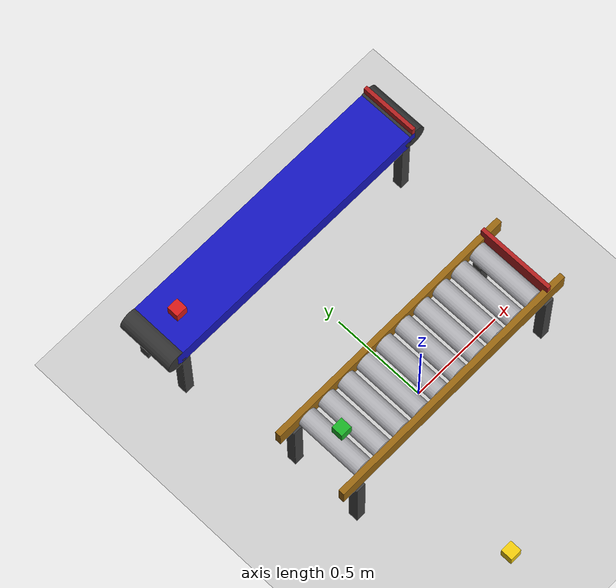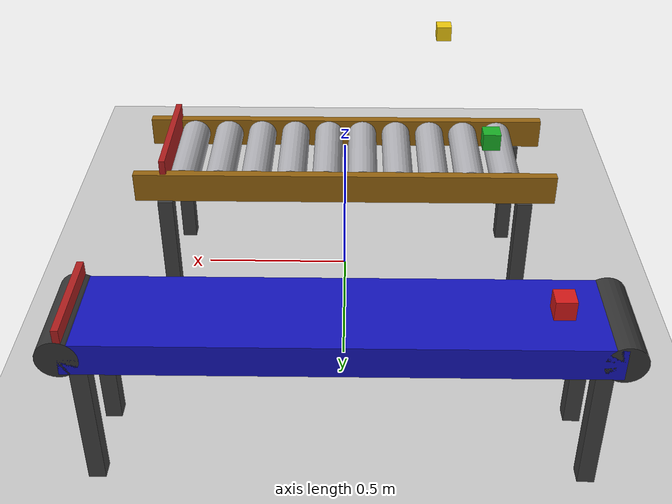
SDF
<sdf version="1.9">
 <world name="conveyor_compare">
  <physics name="4ms" type="ignored">
   <max_step_size>0.004</max_step_size>
   <real_time_factor>1.0</real_time_factor>
  </physics>
  <plugin filename="gz-sim-physics-system" name="gz::sim::systems::Physics"/>
  <plugin filename="gz-sim-user-commands-system" name="gz::sim::systems::UserCommands"/>
  <plugin filename="gz-sim-scene-broadcaster-system" name="gz::sim::systems::SceneBroadcaster"/>
  <scene><ambient>1 1 1</ambient><background>0.8 0.85 0.9</background></scene>
  <light type="directional" name="sun">
   <pose>0 0 10 0 0 0</pose>
   <diffuse>0.9 0.9 0.9 1</diffuse>
   <specular>0.3 0.3 0.3 1</specular>
   <direction>-0.4 0.2 -0.9</direction>
  </light>
  <model name="ground_plane">
   <static>true</static>
   <link name="link">
    <collision name="collision">
     <geometry><plane><normal>0 0 1</normal><size>100 100</size></plane></geometry>
    </collision>
    <visual name="visual">
     <geometry><plane><normal>0 0 1</normal><size>100 100</size></plane></geometry>
     <material><ambient>0.8 0.8 0.8 1</ambient><diffuse>0.8 0.8 0.8 1</diffuse></material>
    </visual>
   </link>
  </model>
  <model name="belt_track">
   <pose>0 0.9 0 0 0 0</pose>
   <static>1</static>
   <link name="base_link">
    <pose>0 0 0.450 0 0 0</pose>
    <collision name="belt_col">
     <geometry><box><size>1.5 0.30 0.10</size></box></geometry>
     <surface><friction><ode><mu>0.7</mu><mu2>150</mu2><fdir1>0 1 0</fdir1></ode></friction></surface>
    </collision>
    <visual name="belt_vis">
     <geometry><box><size>1.5 0.30 0.10</size></box></geometry>
     <material><ambient>0.05 0.05 0.6 1</ambient><diffuse>0.08 0.08 0.75 1</diffuse></material>
    </visual>
    <collision name="roll_a_col">
     <pose>0.75 0 0 -1.5708 0 0</pose>
     <geometry><cylinder><length>0.30</length><radius>0.06</radius></cylinder></geometry>
    </collision>
    <visual name="roll_a_vis">
     <pose>0.75 0 0 -1.5708 0 0</pose>
     <geometry><cylinder><length>0.30</length><radius>0.06</radius></cylinder></geometry>
     <material><ambient>0.2 0.2 0.2 1</ambient><diffuse>0.2 0.2 0.2 1</diffuse></material>
    </visual>
    <collision name="roll_b_col">
     <pose>-0.75 0 0 -1.5708 0 0</pose>
     <geometry><cylinder><length>0.30</length><radius>0.06</radius></cylinder></geometry>
    </collision>
    <visual name="roll_b_vis">
     <pose>-0.75 0 0 -1.5708 0 0</pose>
     <geometry><cylinder><length>0.30</length><radius>0.06</radius></cylinder></geometry>
     <material><ambient>0.2 0.2 0.2 1</ambient><diffuse>0.2 0.2 0.2 1</diffuse></material>
    </visual>
    <collision name="lip_col">
     <pose>0.74 0 0.05 0 0 0</pose>
     <geometry><box><size>0.02 0.30 0.10</size></box></geometry>
    </collision>
    <visual name="lip_vis">
     <pose>0.74 0 0.05 0 0 0</pose>
     <geometry><box><size>0.02 0.30 0.10</size></box></geometry>
     <material><ambient>0.6 0.1 0.1 1</ambient><diffuse>0.7 0.12 0.12 1</diffuse></material>
    </visual>
   </link>
   <link name="leg_0">
    <pose>-0.7 -0.12 0.2000 0 0 0</pose>
    <visual name="visual">
     <geometry><box><size>0.05 0.05 0.4000</size></box></geometry>
     <material><ambient>0.25 0.25 0.25 1</ambient><diffuse>0.25 0.25 0.25 1</diffuse></material>
    </visual>
   </link>
   <link name="leg_1">
    <pose>-0.7 0.12 0.2000 0 0 0</pose>
    <visual name="visual">
     <geometry><box><size>0.05 0.05 0.4000</size></box></geometry>
     <material><ambient>0.25 0.25 0.25 1</ambient><diffuse>0.25 0.25 0.25 1</diffuse></material>
    </visual>
   </link>
   <link name="leg_2">
    <pose>0.7 -0.12 0.2000 0 0 0</pose>
    <visual name="visual">
     <geometry><box><size>0.05 0.05 0.4000</size></box></geometry>
     <material><ambient>0.25 0.25 0.25 1</ambient><diffuse>0.25 0.25 0.25 1</diffuse></material>
    </visual>
   </link>
   <link name="leg_3">
    <pose>0.7 0.12 0.2000 0 0 0</pose>
    <visual name="visual">
     <geometry><box><size>0.05 0.05 0.4000</size></box></geometry>
     <material><ambient>0.25 0.25 0.25 1</ambient><diffuse>0.25 0.25 0.25 1</diffuse></material>
    </visual>
   </link>
   <plugin filename="gz-sim-track-controller-system" name="gz::sim::systems::TrackController">
    <link>base_link</link>
   </plugin>
  </model>
  <model name="roller_conv">
   <link name="frame_link">
    <collision name="rail_l_col">
     <pose>0 0.19 0.450 0 0 0</pose>
     <geometry><box><size>1.4 0.03 0.10</size></box></geometry>
    </collision>
    <visual name="rail_l_vis">
     <pose>0 0.19 0.450 0 0 0</pose>
     <geometry><box><size>1.4 0.03 0.10</size></box></geometry>
     <material><ambient>0.5 0.35 0.05 1</ambient><diffuse>0.6 0.4 0.06 1</diffuse></material>
    </visual>
    <collision name="rail_r_col">
     <pose>0 -0.19 0.450 0 0 0</pose>
     <geometry><box><size>1.4 0.03 0.10</size></box></geometry>
    </collision>
    <visual name="rail_r_vis">
     <pose>0 -0.19 0.450 0 0 0</pose>
     <geometry><box><size>1.4 0.03 0.10</size></box></geometry>
     <material><ambient>0.5 0.35 0.05 1</ambient><diffuse>0.6 0.4 0.06 1</diffuse></material>
    </visual>
    <collision name="lip_col">
     <pose>0.60 0 0.500 0 0 0</pose>
     <geometry><box><size>0.02 0.40 0.10</size></box></geometry>
    </collision>
    <visual name="lip_vis">
     <pose>0.60 0 0.500 0 0 0</pose>
     <geometry><box><size>0.02 0.40 0.10</size></box></geometry>
     <material><ambient>0.6 0.1 0.1 1</ambient><diffuse>0.7 0.12 0.12 1</diffuse></material>
    </visual>
   </link>
   <joint name="frame_fixed" type="fixed"><parent>world</parent><child>frame_link</child></joint>
   <link name="fleg_0">
    <pose>-0.6 -0.19 0.2000 0 0 0</pose>
    <visual name="visual">
     <geometry><box><size>0.05 0.05 0.4000</size></box></geometry>
     <material><ambient>0.25 0.25 0.25 1</ambient><diffuse>0.25 0.25 0.25 1</diffuse></material>
    </visual>
   </link>
   <link name="fleg_1">
    <pose>-0.6 0.19 0.2000 0 0 0</pose>
    <visual name="visual">
     <geometry><box><size>0.05 0.05 0.4000</size></box></geometry>
     <material><ambient>0.25 0.25 0.25 1</ambient><diffuse>0.25 0.25 0.25 1</diffuse></material>
    </visual>
   </link>
   <link name="fleg_2">
    <pose>0.6 -0.19 0.2000 0 0 0</pose>
    <visual name="visual">
     <geometry><box><size>0.05 0.05 0.4000</size></box></geometry>
     <material><ambient>0.25 0.25 0.25 1</ambient><diffuse>0.25 0.25 0.25 1</diffuse></material>
    </visual>
   </link>
   <link name="fleg_3">
    <pose>0.6 0.19 0.2000 0 0 0</pose>
    <visual name="visual">
     <geometry><box><size>0.05 0.05 0.4000</size></box></geometry>
     <material><ambient>0.25 0.25 0.25 1</ambient><diffuse>0.25 0.25 0.25 1</diffuse></material>
    </visual>
   </link>
   <link name="roller_0">
    <pose>-0.54 0 0.450 1.5708 0 0</pose>
    <inertial>
     <mass>0.3</mass>
     <inertia><ixx>0.0006</ixx><iyy>0.0006</iyy><izz>0.0004</izz><ixy>0</ixy><ixz>0</ixz><iyz>0</iyz></inertia>
    </inertial>
    <collision name="col">
     <geometry><cylinder><length>0.34</length><radius>0.05</radius></cylinder></geometry>
     <surface><friction><ode><mu>1.2</mu><mu2>1.2</mu2></ode></friction></surface>
    </collision>
    <visual name="vis">
     <geometry><cylinder><length>0.34</length><radius>0.05</radius></cylinder></geometry>
     <material><ambient>0.55 0.55 0.58 1</ambient><diffuse>0.7 0.7 0.72 1</diffuse></material>
    </visual>
   </link>
   <joint name="roller_0_joint" type="revolute">
    <parent>frame_link</parent>
    <child>roller_0</child>
    <axis>
     <xyz>0 1 0</xyz>
     <limit><lower>-1e16</lower><upper>1e16</upper></limit>
     <dynamics><friction>0.0</friction></dynamics>
    </axis>
   </joint>
   <plugin filename="gz-sim-joint-controller-system" name="gz::sim::systems::JointController">
    <joint_name>roller_0_joint</joint_name>
    <initial_velocity>-4.0</initial_velocity>
    <p_gain>0.4</p_gain>
   </plugin>
   <link name="roller_1">
    <pose>-0.42 0 0.450 1.5708 0 0</pose>
    <inertial>
     <mass>0.3</mass>
     <inertia><ixx>0.0006</ixx><iyy>0.0006</iyy><izz>0.0004</izz><ixy>0</ixy><ixz>0</ixz><iyz>0</iyz></inertia>
    </inertial>
    <collision name="col">
     <geometry><cylinder><length>0.34</length><radius>0.05</radius></cylinder></geometry>
     <surface><friction><ode><mu>1.2</mu><mu2>1.2</mu2></ode></friction></surface>
    </collision>
    <visual name="vis">
     <geometry><cylinder><length>0.34</length><radius>0.05</radius></cylinder></geometry>
     <material><ambient>0.55 0.55 0.58 1</ambient><diffuse>0.7 0.7 0.72 1</diffuse></material>
    </visual>
   </link>
   <joint name="roller_1_joint" type="revolute">
    <parent>frame_link</parent>
    <child>roller_1</child>
    <axis>
     <xyz>0 1 0</xyz>
     <limit><lower>-1e16</lower><upper>1e16</upper></limit>
     <dynamics><friction>0.0</friction></dynamics>
    </axis>
   </joint>
   <plugin filename="gz-sim-joint-controller-system" name="gz::sim::systems::JointController">
    <joint_name>roller_1_joint</joint_name>
    <initial_velocity>-4.0</initial_velocity>
    <p_gain>0.4</p_gain>
   </plugin>
   <link name="roller_2">
    <pose>-0.3 0 0.450 1.5708 0 0</pose>
    <inertial>
     <mass>0.3</mass>
     <inertia><ixx>0.0006</ixx><iyy>0.0006</iyy><izz>0.0004</izz><ixy>0</ixy><ixz>0</ixz><iyz>0</iyz></inertia>
    </inertial>
    <collision name="col">
     <geometry><cylinder><length>0.34</length><radius>0.05</radius></cylinder></geometry>
     <surface><friction><ode><mu>1.2</mu><mu2>1.2</mu2></ode></friction></surface>
    </collision>
    <visual name="vis">
     <geometry><cylinder><length>0.34</length><radius>0.05</radius></cylinder></geometry>
     <material><ambient>0.55 0.55 0.58 1</ambient><diffuse>0.7 0.7 0.72 1</diffuse></material>
    </visual>
   </link>
   <joint name="roller_2_joint" type="revolute">
    <parent>frame_link</parent>
    <child>roller_2</child>
    <axis>
     <xyz>0 1 0</xyz>
     <limit><lower>-1e16</lower><upper>1e16</upper></limit>
     <dynamics><friction>0.0</friction></dynamics>
    </axis>
   </joint>
   <plugin filename="gz-sim-joint-controller-system" name="gz::sim::systems::JointController">
    <joint_name>roller_2_joint</joint_name>
    <initial_velocity>-4.0</initial_velocity>
    <p_gain>0.4</p_gain>
   </plugin>
   <link name="roller_3">
    <pose>-0.18 0 0.450 1.5708 0 0</pose>
    <inertial>
     <mass>0.3</mass>
     <inertia><ixx>0.0006</ixx><iyy>0.0006</iyy><izz>0.0004</izz><ixy>0</ixy><ixz>0</ixz><iyz>0</iyz></inertia>
    </inertial>
    <collision name="col">
     <geometry><cylinder><length>0.34</length><radius>0.05</radius></cylinder></geometry>
     <surface><friction><ode><mu>1.2</mu><mu2>1.2</mu2></ode></friction></surface>
    </collision>
    <visual name="vis">
     <geometry><cylinder><length>0.34</length><radius>0.05</radius></cylinder></geometry>
     <material><ambient>0.55 0.55 0.58 1</ambient><diffuse>0.7 0.7 0.72 1</diffuse></material>
    </visual>
   </link>
   <joint name="roller_3_joint" type="revolute">
    <parent>frame_link</parent>
    <child>roller_3</child>
    <axis>
     <xyz>0 1 0</xyz>
     <limit><lower>-1e16</lower><upper>1e16</upper></limit>
     <dynamics><friction>0.0</friction></dynamics>
    </axis>
   </joint>
   <plugin filename="gz-sim-joint-controller-system" name="gz::sim::systems::JointController">
    <joint_name>roller_3_joint</joint_name>
    <initial_velocity>-4.0</initial_velocity>
    <p_gain>0.4</p_gain>
   </plugin>
   <link name="roller_4">
    <pose>-0.06 0 0.450 1.5708 0 0</pose>
    <inertial>
     <mass>0.3</mass>
     <inertia><ixx>0.0006</ixx><iyy>0.0006</iyy><izz>0.0004</izz><ixy>0</ixy><ixz>0</ixz><iyz>0</iyz></inertia>
    </inertial>
    <collision name="col">
     <geometry><cylinder><length>0.34</length><radius>0.05</radius></cylinder></geometry>
     <surface><friction><ode><mu>1.2</mu><mu2>1.2</mu2></ode></friction></surface>
    </collision>
    <visual name="vis">
     <geometry><cylinder><length>0.34</length><radius>0.05</radius></cylinder></geometry>
     <material><ambient>0.55 0.55 0.58 1</ambient><diffuse>0.7 0.7 0.72 1</diffuse></material>
    </visual>
   </link>
   <joint name="roller_4_joint" type="revolute">
    <parent>frame_link</parent>
    <child>roller_4</child>
    <axis>
     <xyz>0 1 0</xyz>
     <limit><lower>-1e16</lower><upper>1e16</upper></limit>
     <dynamics><friction>0.0</friction></dynamics>
    </axis>
   </joint>
   <plugin filename="gz-sim-joint-controller-system" name="gz::sim::systems::JointController">
    <joint_name>roller_4_joint</joint_name>
    <initial_velocity>-4.0</initial_velocity>
    <p_gain>0.4</p_gain>
   </plugin>
   <link name="roller_5">
    <pose>0.06 0 0.450 1.5708 0 0</pose>
    <inertial>
     <mass>0.3</mass>
     <inertia><ixx>0.0006</ixx><iyy>0.0006</iyy><izz>0.0004</izz><ixy>0</ixy><ixz>0</ixz><iyz>0</iyz></inertia>
    </inertial>
    <collision name="col">
     <geometry><cylinder><length>0.34</length><radius>0.05</radius></cylinder></geometry>
     <surface><friction><ode><mu>1.2</mu><mu2>1.2</mu2></ode></friction></surface>
    </collision>
    <visual name="vis">
     <geometry><cylinder><length>0.34</length><radius>0.05</radius></cylinder></geometry>
     <material><ambient>0.55 0.55 0.58 1</ambient><diffuse>0.7 0.7 0.72 1</diffuse></material>
    </visual>
   </link>
   <joint name="roller_5_joint" type="revolute">
    <parent>frame_link</parent>
    <child>roller_5</child>
    <axis>
     <xyz>0 1 0</xyz>
     <limit><lower>-1e16</lower><upper>1e16</upper></limit>
     <dynamics><friction>0.0</friction></dynamics>
    </axis>
   </joint>
   <plugin filename="gz-sim-joint-controller-system" name="gz::sim::systems::JointController">
    <joint_name>roller_5_joint</joint_name>
    <initial_velocity>-4.0</initial_velocity>
    <p_gain>0.4</p_gain>
   </plugin>
   <link name="roller_6">
    <pose>0.18 0 0.450 1.5708 0 0</pose>
    <inertial>
     <mass>0.3</mass>
     <inertia><ixx>0.0006</ixx><iyy>0.0006</iyy><izz>0.0004</izz><ixy>0</ixy><ixz>0</ixz><iyz>0</iyz></inertia>
    </inertial>
    <collision name="col">
     <geometry><cylinder><length>0.34</length><radius>0.05</radius></cylinder></geometry>
     <surface><friction><ode><mu>1.2</mu><mu2>1.2</mu2></ode></friction></surface>
    </collision>
    <visual name="vis">
     <geometry><cylinder><length>0.34</length><radius>0.05</radius></cylinder></geometry>
     <material><ambient>0.55 0.55 0.58 1</ambient><diffuse>0.7 0.7 0.72 1</diffuse></material>
    </visual>
   </link>
   <joint name="roller_6_joint" type="revolute">
    <parent>frame_link</parent>
    <child>roller_6</child>
    <axis>
     <xyz>0 1 0</xyz>
     <limit><lower>-1e16</lower><upper>1e16</upper></limit>
     <dynamics><friction>0.0</friction></dynamics>
    </axis>
   </joint>
   <plugin filename="gz-sim-joint-controller-system" name="gz::sim::systems::JointController">
    <joint_name>roller_6_joint</joint_name>
    <initial_velocity>-4.0</initial_velocity>
    <p_gain>0.4</p_gain>
   </plugin>
   <link name="roller_7">
    <pose>0.3 0 0.450 1.5708 0 0</pose>
    <inertial>
     <mass>0.3</mass>
     <inertia><ixx>0.0006</ixx><iyy>0.0006</iyy><izz>0.0004</izz><ixy>0</ixy><ixz>0</ixz><iyz>0</iyz></inertia>
    </inertial>
    <collision name="col">
     <geometry><cylinder><length>0.34</length><radius>0.05</radius></cylinder></geometry>
     <surface><friction><ode><mu>1.2</mu><mu2>1.2</mu2></ode></friction></surface>
    </collision>
    <visual name="vis">
     <geometry><cylinder><length>0.34</length><radius>0.05</radius></cylinder></geometry>
     <material><ambient>0.55 0.55 0.58 1</ambient><diffuse>0.7 0.7 0.72 1</diffuse></material>
    </visual>
   </link>
   <joint name="roller_7_joint" type="revolute">
    <parent>frame_link</parent>
    <child>roller_7</child>
    <axis>
     <xyz>0 1 0</xyz>
     <limit><lower>-1e16</lower><upper>1e16</upper></limit>
     <dynamics><friction>0.0</friction></dynamics>
    </axis>
   </joint>
   <plugin filename="gz-sim-joint-controller-system" name="gz::sim::systems::JointController">
    <joint_name>roller_7_joint</joint_name>
    <initial_velocity>-4.0</initial_velocity>
    <p_gain>0.4</p_gain>
   </plugin>
   <link name="roller_8">
    <pose>0.42 0 0.450 1.5708 0 0</pose>
    <inertial>
     <mass>0.3</mass>
     <inertia><ixx>0.0006</ixx><iyy>0.0006</iyy><izz>0.0004</izz><ixy>0</ixy><ixz>0</ixz><iyz>0</iyz></inertia>
    </inertial>
    <collision name="col">
     <geometry><cylinder><length>0.34</length><radius>0.05</radius></cylinder></geometry>
     <surface><friction><ode><mu>1.2</mu><mu2>1.2</mu2></ode></friction></surface>
    </collision>
    <visual name="vis">
     <geometry><cylinder><length>0.34</length><radius>0.05</radius></cylinder></geometry>
     <material><ambient>0.55 0.55 0.58 1</ambient><diffuse>0.7 0.7 0.72 1</diffuse></material>
    </visual>
   </link>
   <joint name="roller_8_joint" type="revolute">
    <parent>frame_link</parent>
    <child>roller_8</child>
    <axis>
     <xyz>0 1 0</xyz>
     <limit><lower>-1e16</lower><upper>1e16</upper></limit>
     <dynamics><friction>0.0</friction></dynamics>
    </axis>
   </joint>
   <plugin filename="gz-sim-joint-controller-system" name="gz::sim::systems::JointController">
    <joint_name>roller_8_joint</joint_name>
    <initial_velocity>-4.0</initial_velocity>
    <p_gain>0.4</p_gain>
   </plugin>
   <link name="roller_9">
    <pose>0.54 0 0.450 1.5708 0 0</pose>
    <inertial>
     <mass>0.3</mass>
     <inertia><ixx>0.0006</ixx><iyy>0.0006</iyy><izz>0.0004</izz><ixy>0</ixy><ixz>0</ixz><iyz>0</iyz></inertia>
    </inertial>
    <collision name="col">
     <geometry><cylinder><length>0.34</length><radius>0.05</radius></cylinder></geometry>
     <surface><friction><ode><mu>1.2</mu><mu2>1.2</mu2></ode></friction></surface>
    </collision>
    <visual name="vis">
     <geometry><cylinder><length>0.34</length><radius>0.05</radius></cylinder></geometry>
     <material><ambient>0.55 0.55 0.58 1</ambient><diffuse>0.7 0.7 0.72 1</diffuse></material>
    </visual>
   </link>
   <joint name="roller_9_joint" type="revolute">
    <parent>frame_link</parent>
    <child>roller_9</child>
    <axis>
     <xyz>0 1 0</xyz>
     <limit><lower>-1e16</lower><upper>1e16</upper></limit>
     <dynamics><friction>0.0</friction></dynamics>
    </axis>
   </joint>
   <plugin filename="gz-sim-joint-controller-system" name="gz::sim::systems::JointController">
    <joint_name>roller_9_joint</joint_name>
    <initial_velocity>-4.0</initial_velocity>
    <p_gain>0.4</p_gain>
   </plugin>
  </model>
  <model name="cube_track">
   <pose>-0.6 0.9 0.531 0 0 0</pose>
   <link name="link">
    <inertial>
     <mass>0.2</mass>
     <inertia><ixx>0.00012</ixx><iyy>0.00012</iyy><izz>0.00012</izz><ixy>0</ixy><ixz>0</ixz><iyz>0</iyz></inertia>
    </inertial>
    <collision name="collision">
     <geometry><box><size>0.06 0.06 0.06</size></box></geometry>
     <surface><friction><ode><mu>1.0</mu><mu2>1.0</mu2></ode></friction></surface>
    </collision>
    <visual name="visual">
     <geometry><box><size>0.06 0.06 0.06</size></box></geometry>
     <material><ambient>0.85 0.1 0.1 1</ambient><diffuse>0.85 0.1 0.1 1</diffuse></material>
    </visual>
   </link>
  </model>
  <model name="cube_roller">
   <pose>-0.5 0.0 0.531 0 0 0</pose>
   <link name="link">
    <inertial>
     <mass>0.2</mass>
     <inertia><ixx>0.00012</ixx><iyy>0.00012</iyy><izz>0.00012</izz><ixy>0</ixy><ixz>0</ixz><iyz>0</iyz></inertia>
    </inertial>
    <collision name="collision">
     <geometry><box><size>0.06 0.06 0.06</size></box></geometry>
     <surface><friction><ode><mu>1.0</mu><mu2>1.0</mu2></ode></friction></surface>
    </collision>
    <visual name="visual">
     <geometry><box><size>0.06 0.06 0.06</size></box></geometry>
     <material><ambient>0.1 0.7 0.15 1</ambient><diffuse>0.1 0.7 0.15 1</diffuse></material>
    </visual>
   </link>
  </model>
  <model name="cube_mesh">
   <pose>-0.4 -0.9 0.531 0 0 0</pose>
   <link name="link">
    <inertial>
     <mass>0.2</mass>
     <inertia><ixx>0.00012</ixx><iyy>0.00012</iyy><izz>0.00012</izz><ixy>0</ixy><ixz>0</ixz><iyz>0</iyz></inertia>
    </inertial>
    <collision name="collision">
     <geometry><box><size>0.06 0.06 0.06</size></box></geometry>
     <surface><friction><ode><mu>1.0</mu><mu2>1.0</mu2></ode></friction></surface>
    </collision>
    <visual name="visual">
     <geometry><box><size>0.06 0.06 0.06</size></box></geometry>
     <material><ambient>0.95 0.8 0.05 1</ambient><diffuse>0.95 0.8 0.05 1</diffuse></material>
    </visual>
   </link>
  </model>
 </world>
</sdf>
